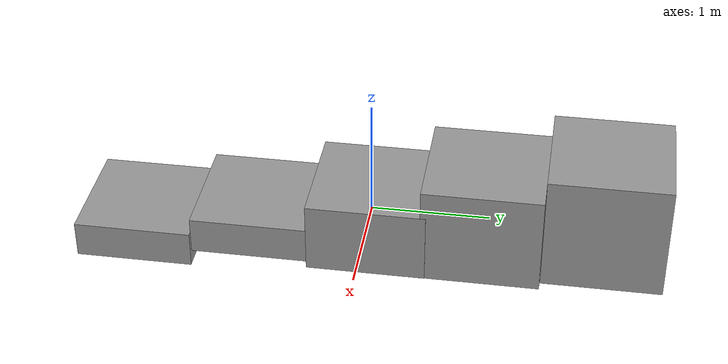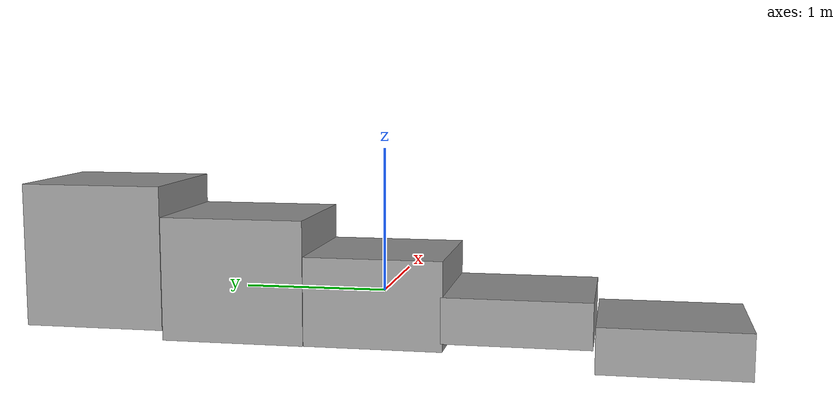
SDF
<?xml version='1.0'?>
<sdf version='1.6'>
  <model name='escalera'>
    <link name='link_0'>
      <pose frame=''>0.001695 1.97317 0.252526 0 -0 0</pose>
      <inertial>
        <mass>1</mass>
        <inertia>
          <ixx>0.166667</ixx>
          <ixy>0</ixy>
          <ixz>0</ixz>
          <iyy>0.166667</iyy>
          <iyz>0</iyz>
          <izz>0.166667</izz>
        </inertia>
      </inertial>
      <visual name='visual'>
        <pose frame=''>0 0 0 0 -0 0</pose>
        <geometry>
          <box>
            <size>1 1 1</size>
          </box>
        </geometry>
        <material>
          <lighting>1</lighting>
          <script>
            <uri>file://media/materials/scripts/gazebo.material</uri>
            <name>Gazebo/Grey</name>
          </script>
          <ambient>0.3 0.3 0.3 1</ambient>
          <diffuse>0.7 0.7 0.7 1</diffuse>
          <specular>0.01 0.01 0.01 1</specular>
          <emissive>0 0 0 1</emissive>
        </material>
        <cast_shadows>1</cast_shadows>
        <transparency>0</transparency>
      </visual>
      <collision name='collision'>
        <laser_retro>0</laser_retro>
        <max_contacts>10</max_contacts>
        <pose frame=''>0 0 0 0 -0 0</pose>
        <geometry>
          <box>
            <size>1 1 1</size>
          </box>
        </geometry>
        <surface>
          <friction>
            <ode>
              <mu>1</mu>
              <mu2>1</mu2>
              <fdir1>0 0 0</fdir1>
              <slip1>0</slip1>
              <slip2>0</slip2>
            </ode>
            <torsional>
              <coefficient>1</coefficient>
              <patch_radius>0</patch_radius>
              <surface_radius>0</surface_radius>
              <use_patch_radius>1</use_patch_radius>
              <ode>
                <slip>0</slip>
              </ode>
            </torsional>
          </friction>
          <bounce>
            <restitution_coefficient>0</restitution_coefficient>
            <threshold>1e+06</threshold>
          </bounce>
          <contact>
            <collide_without_contact>0</collide_without_contact>
            <collide_without_contact_bitmask>1</collide_without_contact_bitmask>
            <collide_bitmask>1</collide_bitmask>
            <ode>
              <soft_cfm>0</soft_cfm>
              <soft_erp>0.2</soft_erp>
              <kp>1e+13</kp>
              <kd>1</kd>
              <max_vel>0.01</max_vel>
              <min_depth>0</min_depth>
            </ode>
            <bullet>
              <split_impulse>1</split_impulse>
              <split_impulse_penetration_threshold>-0.01</split_impulse_penetration_threshold>
              <soft_cfm>0</soft_cfm>
              <soft_erp>0.2</soft_erp>
              <kp>1e+13</kp>
              <kd>1</kd>
            </bullet>
          </contact>
        </surface>
      </collision>
    </link>
    <link name='link_1'>
      <pose frame=''>-0.001015 0.968314 0.113971 0 -0 0</pose>
      <inertial>
        <mass>0.856677</mass>
        <inertia>
          <ixx>0.123783</ixx>
          <ixy>0</ixy>
          <ixz>0</ixz>
          <iyy>0.123783</iyy>
          <iyz>0</iyz>
          <izz>0.14278</izz>
        </inertia>
        <pose frame=''>0 0 0 0 -0 0</pose>
      </inertial>
      <visual name='visual'>
        <pose frame=''>0 0 0 0 -0 0</pose>
        <geometry>
          <box>
            <size>1 1 0.856679</size>
          </box>
        </geometry>
        <material>
          <lighting>1</lighting>
          <script>
            <uri>file://media/materials/scripts/gazebo.material</uri>
            <name>Gazebo/Grey</name>
          </script>
          <ambient>0.3 0.3 0.3 1</ambient>
          <diffuse>0.7 0.7 0.7 1</diffuse>
          <specular>0.01 0.01 0.01 1</specular>
          <emissive>0 0 0 1</emissive>
        </material>
        <cast_shadows>1</cast_shadows>
        <transparency>0</transparency>
      </visual>
      <collision name='collision'>
        <laser_retro>0</laser_retro>
        <max_contacts>10</max_contacts>
        <pose frame=''>0 0 0 0 -0 0</pose>
        <geometry>
          <box>
            <size>1 1 0.856679</size>
          </box>
        </geometry>
        <surface>
          <friction>
            <ode>
              <mu>1</mu>
              <mu2>1</mu2>
              <fdir1>0 0 0</fdir1>
              <slip1>0</slip1>
              <slip2>0</slip2>
            </ode>
            <torsional>
              <coefficient>1</coefficient>
              <patch_radius>0</patch_radius>
              <surface_radius>0</surface_radius>
              <use_patch_radius>1</use_patch_radius>
              <ode>
                <slip>0</slip>
              </ode>
            </torsional>
          </friction>
          <bounce>
            <restitution_coefficient>0</restitution_coefficient>
            <threshold>1e+06</threshold>
          </bounce>
          <contact>
            <collide_without_contact>0</collide_without_contact>
            <collide_without_contact_bitmask>1</collide_without_contact_bitmask>
            <collide_bitmask>1</collide_bitmask>
            <ode>
              <soft_cfm>0</soft_cfm>
              <soft_erp>0.2</soft_erp>
              <kp>1e+13</kp>
              <kd>1</kd>
              <max_vel>0.01</max_vel>
              <min_depth>0</min_depth>
            </ode>
            <bullet>
              <split_impulse>1</split_impulse>
              <split_impulse_penetration_threshold>-0.01</split_impulse_penetration_threshold>
              <soft_cfm>0</soft_cfm>
              <soft_erp>0.2</soft_erp>
              <kp>1e+13</kp>
              <kd>1</kd>
            </bullet>
          </contact>
        </surface>
      </collision>
    </link>
    <link name='link_1_clone'>
      <pose frame=''>0.004977 0.015189 -0.009154 0 -0 0</pose>
      <inertial>
        <mass>0.607907</mass>
        <inertia>
          <ixx>0.0695991</ixx>
          <ixy>0</ixy>
          <ixz>0</ixz>
          <iyy>0.069014</iyy>
          <iyz>0</iyz>
          <izz>0.100733</izz>
        </inertia>
        <pose frame=''>0 0 0 0 -0 0</pose>
      </inertial>
      <visual name='visual'>
        <pose frame=''>0 0 0 0 -0 0</pose>
        <geometry>
          <box>
            <size>0.994209 1 0.611449</size>
          </box>
        </geometry>
        <material>
          <lighting>1</lighting>
          <script>
            <uri>file://media/materials/scripts/gazebo.material</uri>
            <name>Gazebo/Grey</name>
          </script>
          <ambient>0.3 0.3 0.3 1</ambient>
          <diffuse>0.7 0.7 0.7 1</diffuse>
          <specular>0.01 0.01 0.01 1</specular>
          <emissive>0 0 0 1</emissive>
          <shader type='pixel'/>
        </material>
        <cast_shadows>1</cast_shadows>
        <transparency>0</transparency>
      </visual>
      <collision name='collision'>
        <laser_retro>0</laser_retro>
        <max_contacts>10</max_contacts>
        <pose frame=''>0 0 0 0 -0 0</pose>
        <geometry>
          <box>
            <size>0.994209 1 0.611449</size>
          </box>
        </geometry>
        <surface>
          <friction>
            <ode>
              <mu>1</mu>
              <mu2>1</mu2>
              <fdir1>0 0 0</fdir1>
              <slip1>0</slip1>
              <slip2>0</slip2>
            </ode>
            <torsional>
              <coefficient>1</coefficient>
              <patch_radius>0</patch_radius>
              <surface_radius>0</surface_radius>
              <use_patch_radius>1</use_patch_radius>
              <ode>
                <slip>0</slip>
              </ode>
            </torsional>
          </friction>
          <bounce>
            <restitution_coefficient>0</restitution_coefficient>
            <threshold>1e+06</threshold>
          </bounce>
          <contact>
            <collide_without_contact>0</collide_without_contact>
            <collide_without_contact_bitmask>1</collide_without_contact_bitmask>
            <collide_bitmask>1</collide_bitmask>
            <ode>
              <soft_cfm>0</soft_cfm>
              <soft_erp>0.2</soft_erp>
              <kp>1e+13</kp>
              <kd>1</kd>
              <max_vel>0.01</max_vel>
              <min_depth>0</min_depth>
            </ode>
            <bullet>
              <split_impulse>1</split_impulse>
              <split_impulse_penetration_threshold>-0.01</split_impulse_penetration_threshold>
              <soft_cfm>0</soft_cfm>
              <soft_erp>0.2</soft_erp>
              <kp>1e+13</kp>
              <kd>1</kd>
            </bullet>
          </contact>
        </surface>
      </collision>
    </link>
    <link name='link_1_clone_clone'>
      <pose frame=''>-0.001732 -0.971398 -0.099836 0 -0 0</pose>
      <inertial>
        <mass>0.312139</mass>
        <inertia>
          <ixx>0.0285756</ixx>
          <ixy>0</ixy>
          <ixz>0</ixz>
          <iyy>0.0282752</iyy>
          <iyz>0</iyz>
          <izz>0.0517229</izz>
        </inertia>
        <pose frame=''>0 0 0 0 -0 0</pose>
      </inertial>
      <visual name='visual'>
        <pose frame=''>0 0 0 0 -0 0</pose>
        <geometry>
          <box>
            <size>0.994209 1 0.313958</size>
          </box>
        </geometry>
        <material>
          <lighting>1</lighting>
          <script>
            <uri>file://media/materials/scripts/gazebo.material</uri>
            <name>Gazebo/Grey</name>
          </script>
          <ambient>0.3 0.3 0.3 1</ambient>
          <diffuse>0.7 0.7 0.7 1</diffuse>
          <specular>0.01 0.01 0.01 1</specular>
          <emissive>0 0 0 1</emissive>
          <shader type='pixel'/>
        </material>
        <cast_shadows>1</cast_shadows>
        <transparency>0</transparency>
      </visual>
      <collision name='collision'>
        <laser_retro>0</laser_retro>
        <max_contacts>10</max_contacts>
        <pose frame=''>0 0 0 0 -0 0</pose>
        <geometry>
          <box>
            <size>0.994209 1 0.313958</size>
          </box>
        </geometry>
        <surface>
          <friction>
            <ode>
              <mu>1</mu>
              <mu2>1</mu2>
              <fdir1>0 0 0</fdir1>
              <slip1>0</slip1>
              <slip2>0</slip2>
            </ode>
            <torsional>
              <coefficient>1</coefficient>
              <patch_radius>0</patch_radius>
              <surface_radius>0</surface_radius>
              <use_patch_radius>1</use_patch_radius>
              <ode>
                <slip>0</slip>
              </ode>
            </torsional>
          </friction>
          <bounce>
            <restitution_coefficient>0</restitution_coefficient>
            <threshold>1e+06</threshold>
          </bounce>
          <contact>
            <collide_without_contact>0</collide_without_contact>
            <collide_without_contact_bitmask>1</collide_without_contact_bitmask>
            <collide_bitmask>1</collide_bitmask>
            <ode>
              <soft_cfm>0</soft_cfm>
              <soft_erp>0.2</soft_erp>
              <kp>1e+13</kp>
              <kd>1</kd>
              <max_vel>0.01</max_vel>
              <min_depth>0</min_depth>
            </ode>
            <bullet>
              <split_impulse>1</split_impulse>
              <split_impulse_penetration_threshold>-0.01</split_impulse_penetration_threshold>
              <soft_cfm>0</soft_cfm>
              <soft_erp>0.2</soft_erp>
              <kp>1e+13</kp>
              <kd>1</kd>
            </bullet>
          </contact>
        </surface>
      </collision>
    </link>
    <link name='link_1_clone_clone_clone'>
      <pose frame=''>-0.003928 -1.98527 -0.257508 0 -0 0</pose>
      <inertial>
        <mass>0.312139</mass>
        <inertia>
          <ixx>0.0285756</ixx>
          <ixy>0</ixy>
          <ixz>0</ixz>
          <iyy>0.0282752</iyy>
          <iyz>0</iyz>
          <izz>0.0517229</izz>
        </inertia>
        <pose frame=''>0 0 0 0 -0 0</pose>
      </inertial>
      <visual name='visual'>
        <pose frame=''>0 0 0 0 -0 0</pose>
        <geometry>
          <box>
            <size>0.994209 1 0.313958</size>
          </box>
        </geometry>
        <material>
          <lighting>1</lighting>
          <script>
            <uri>file://media/materials/scripts/gazebo.material</uri>
            <name>Gazebo/Grey</name>
          </script>
          <ambient>0.3 0.3 0.3 1</ambient>
          <diffuse>0.7 0.7 0.7 1</diffuse>
          <specular>0.01 0.01 0.01 1</specular>
          <emissive>0 0 0 1</emissive>
          <shader type='pixel'/>
        </material>
        <cast_shadows>1</cast_shadows>
        <transparency>0</transparency>
      </visual>
      <collision name='collision'>
        <laser_retro>0</laser_retro>
        <max_contacts>10</max_contacts>
        <pose frame=''>0 0 0 0 -0 0</pose>
        <geometry>
          <box>
            <size>0.994209 1 0.313958</size>
          </box>
        </geometry>
        <surface>
          <friction>
            <ode>
              <mu>1</mu>
              <mu2>1</mu2>
              <fdir1>0 0 0</fdir1>
              <slip1>0</slip1>
              <slip2>0</slip2>
            </ode>
            <torsional>
              <coefficient>1</coefficient>
              <patch_radius>0</patch_radius>
              <surface_radius>0</surface_radius>
              <use_patch_radius>1</use_patch_radius>
              <ode>
                <slip>0</slip>
              </ode>
            </torsional>
          </friction>
          <bounce>
            <restitution_coefficient>0</restitution_coefficient>
            <threshold>1e+06</threshold>
          </bounce>
          <contact>
            <collide_without_contact>0</collide_without_contact>
            <collide_without_contact_bitmask>1</collide_without_contact_bitmask>
            <collide_bitmask>1</collide_bitmask>
            <ode>
              <soft_cfm>0</soft_cfm>
              <soft_erp>0.2</soft_erp>
              <kp>1e+13</kp>
              <kd>1</kd>
              <max_vel>0.01</max_vel>
              <min_depth>0</min_depth>
            </ode>
            <bullet>
              <split_impulse>1</split_impulse>
              <split_impulse_penetration_threshold>-0.01</split_impulse_penetration_threshold>
              <soft_cfm>0</soft_cfm>
              <soft_erp>0.2</soft_erp>
              <kp>1e+13</kp>
              <kd>1</kd>
            </bullet>
          </contact>
        </surface>
      </collision>
    </link>
    <static>1</static>
    <allow_auto_disable>1</allow_auto_disable>
  </model>
</sdf>
